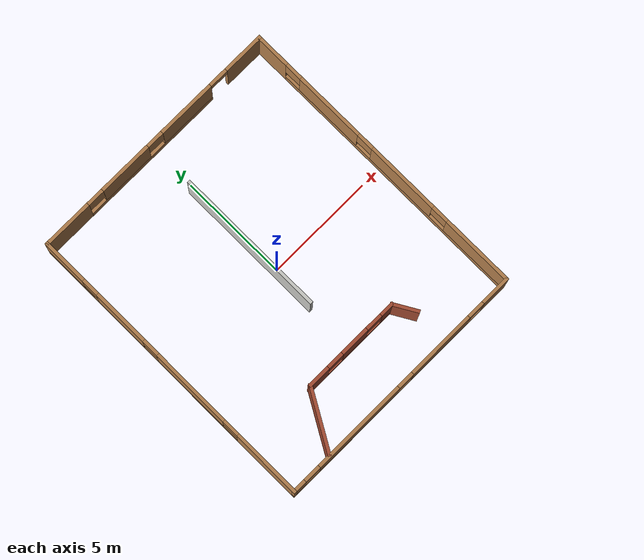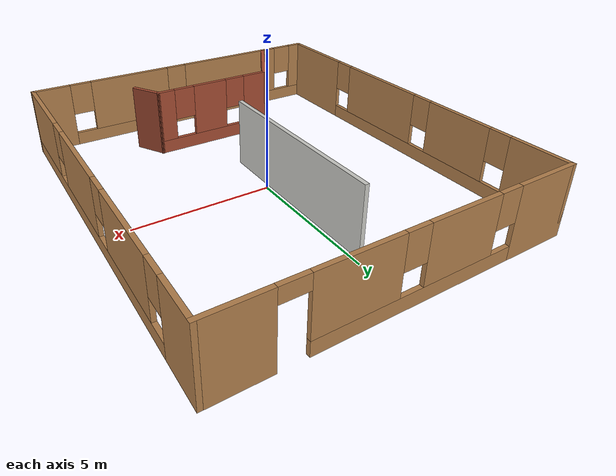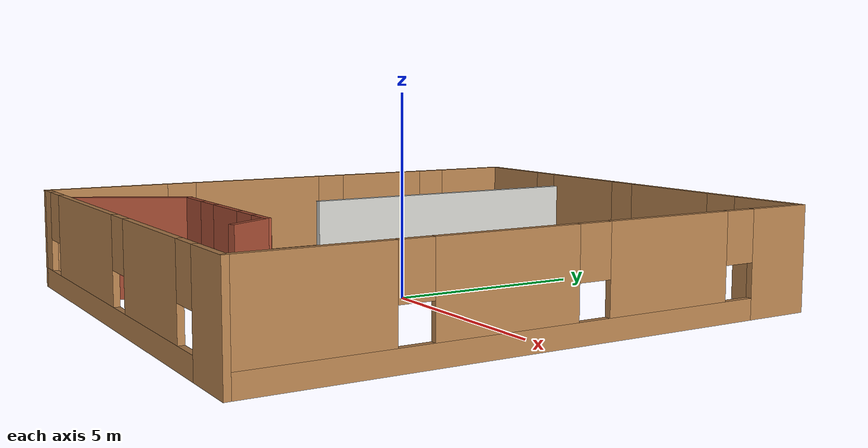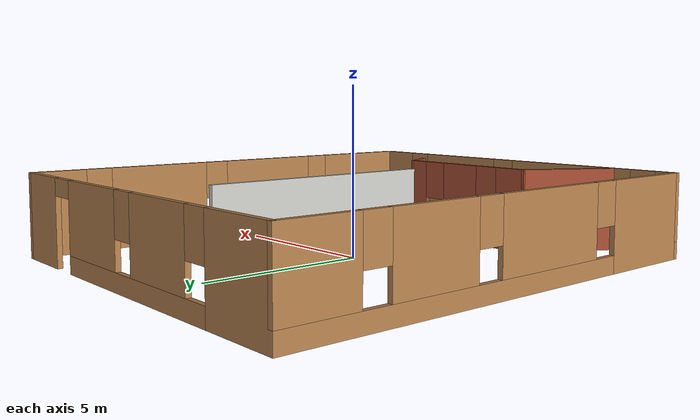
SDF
<?xml version='1.0'?>
<sdf version='1.7'>
  <model name='hotel'>
    <pose>0 0 0 0 -0 0</pose>
    <link name='Wall_0'>
      <pose>0 7 0 0 -0 0</pose>
      <visual name='Wall_0_Visual_0'>
        <pose>-4.89442 0 1.25 0 -0 0</pose>
        <geometry>
          <box>
            <size>2.36117 0.15 2.5</size>
          </box>
        </geometry>
        <material>
          <script>
            <uri>file://media/materials/scripts/gazebo.material</uri>
            <name>Gazebo/Wood</name>
          </script>
          <ambient>1 1 1 1</ambient>
        </material>
        <meta>
          <layer>0</layer>
        </meta>
      </visual>
      <collision name='Wall_0_Collision_0'>
        <geometry>
          <box>
            <size>2.36117 0.15 2.5</size>
          </box>
        </geometry>
        <pose>-4.89442 0 1.25 0 -0 0</pose>
      </collision>
      <visual name='Wall_0_Visual_1'>
        <pose>5.08476 0 1.25 0 -0 0</pose>
        <geometry>
          <box>
            <size>1.98047 0.15 2.5</size>
          </box>
        </geometry>
        <material>
          <script>
            <uri>file://media/materials/scripts/gazebo.material</uri>
            <name>Gazebo/Wood</name>
          </script>
          <ambient>1 1 1 1</ambient>
        </material>
        <meta>
          <layer>0</layer>
        </meta>
      </visual>
      <collision name='Wall_0_Collision_1'>
        <geometry>
          <box>
            <size>1.98047 0.15 2.5</size>
          </box>
        </geometry>
        <pose>5.08476 0 1.25 0 -0 0</pose>
      </collision>
      <visual name='Wall_0_Visual_2'>
        <pose>-0.259655 0 0.25 0 -0 0</pose>
        <geometry>
          <box>
            <size>6.90836 0.15 0.5</size>
          </box>
        </geometry>
        <material>
          <script>
            <uri>file://media/materials/scripts/gazebo.material</uri>
            <name>Gazebo/Wood</name>
          </script>
          <ambient>1 1 1 1</ambient>
        </material>
        <meta>
          <layer>0</layer>
        </meta>
      </visual>
      <collision name='Wall_0_Collision_2'>
        <geometry>
          <box>
            <size>6.90836 0.15 0.5</size>
          </box>
        </geometry>
        <pose>-0.259655 0 0.25 0 -0 0</pose>
      </collision>
      <visual name='Wall_0_Visual_3'>
        <pose>-1.63493 0 1.5 0 -0 0</pose>
        <geometry>
          <box>
            <size>2.55781 0.15 2</size>
          </box>
        </geometry>
        <material>
          <script>
            <uri>file://media/materials/scripts/gazebo.material</uri>
            <name>Gazebo/Wood</name>
          </script>
          <ambient>1 1 1 1</ambient>
        </material>
        <meta>
          <layer>0</layer>
        </meta>
      </visual>
      <collision name='Wall_0_Collision_3'>
        <geometry>
          <box>
            <size>2.55781 0.15 2</size>
          </box>
        </geometry>
        <pose>-1.63493 0 1.5 0 -0 0</pose>
      </collision>
      <visual name='Wall_0_Visual_4'>
        <pose>1.81925 0 1.5 0 -0 0</pose>
        <geometry>
          <box>
            <size>2.75055 0.15 2</size>
          </box>
        </geometry>
        <material>
          <script>
            <uri>file://media/materials/scripts/gazebo.material</uri>
            <name>Gazebo/Wood</name>
          </script>
          <ambient>1 1 1 1</ambient>
        </material>
        <meta>
          <layer>0</layer>
        </meta>
      </visual>
      <collision name='Wall_0_Collision_4'>
        <geometry>
          <box>
            <size>2.75055 0.15 2</size>
          </box>
        </geometry>
        <pose>1.81925 0 1.5 0 -0 0</pose>
      </collision>
      <visual name='Wall_0_Visual_5'>
        <pose>-3.31384 0 1.9 0 -0 0</pose>
        <geometry>
          <box>
            <size>0.8 0.15 1.2</size>
          </box>
        </geometry>
        <material>
          <script>
            <uri>file://media/materials/scripts/gazebo.material</uri>
            <name>Gazebo/Wood</name>
          </script>
          <ambient>1 1 1 1</ambient>
        </material>
        <meta>
          <layer>0</layer>
        </meta>
      </visual>
      <collision name='Wall_0_Collision_5'>
        <geometry>
          <box>
            <size>0.8 0.15 1.2</size>
          </box>
        </geometry>
        <pose>-3.31384 0 1.9 0 -0 0</pose>
      </collision>
      <visual name='Wall_0_Visual_6'>
        <pose>0.043978 0 1.9 0 -0 0</pose>
        <geometry>
          <box>
            <size>0.8 0.15 1.2</size>
          </box>
        </geometry>
        <material>
          <script>
            <uri>file://media/materials/scripts/gazebo.material</uri>
            <name>Gazebo/Wood</name>
          </script>
          <ambient>1 1 1 1</ambient>
        </material>
        <meta>
          <layer>0</layer>
        </meta>
      </visual>
      <collision name='Wall_0_Collision_6'>
        <geometry>
          <box>
            <size>0.8 0.15 1.2</size>
          </box>
        </geometry>
        <pose>0.043978 0 1.9 0 -0 0</pose>
      </collision>
      <visual name='Wall_0_Visual_7'>
        <pose>3.64452 0 2.25 0 -0 0</pose>
        <geometry>
          <box>
            <size>0.9 0.15 0.5</size>
          </box>
        </geometry>
        <material>
          <script>
            <uri>file://media/materials/scripts/gazebo.material</uri>
            <name>Gazebo/Wood</name>
          </script>
          <ambient>1 1 1 1</ambient>
        </material>
        <meta>
          <layer>0</layer>
        </meta>
      </visual>
      <collision name='Wall_0_Collision_7'>
        <geometry>
          <box>
            <size>0.9 0.15 0.5</size>
          </box>
        </geometry>
        <pose>3.64452 0 2.25 0 -0 0</pose>
      </collision>
    </link>
    <link name='Wall_1'>
      <pose>6 0 0 0 -0 -1.5708</pose>
      <visual name='Wall_1_Visual_0'>
        <pose>-6.2442 0 1.25 0 -0 0</pose>
        <geometry>
          <box>
            <size>1.66161 0.15 2.5</size>
          </box>
        </geometry>
        <material>
          <script>
            <uri>file://media/materials/scripts/gazebo.material</uri>
            <name>Gazebo/Wood</name>
          </script>
          <ambient>1 1 1 1</ambient>
        </material>
        <meta>
          <layer>0</layer>
        </meta>
      </visual>
      <collision name='Wall_1_Collision_0'>
        <geometry>
          <box>
            <size>1.66161 0.15 2.5</size>
          </box>
        </geometry>
        <pose>-6.2442 0 1.25 0 -0 0</pose>
      </collision>
      <visual name='Wall_1_Visual_1'>
        <pose>0.830805 0 0.25 0 -0 0</pose>
        <geometry>
          <box>
            <size>12.4884 0.15 0.5</size>
          </box>
        </geometry>
        <material>
          <script>
            <uri>file://media/materials/scripts/gazebo.material</uri>
            <name>Gazebo/Wood</name>
          </script>
          <ambient>1 1 1 1</ambient>
        </material>
        <meta>
          <layer>0</layer>
        </meta>
      </visual>
      <collision name='Wall_1_Collision_1'>
        <geometry>
          <box>
            <size>12.4884 0.15 0.5</size>
          </box>
        </geometry>
        <pose>0.830805 0 0.25 0 -0 0</pose>
      </collision>
      <visual name='Wall_1_Visual_2'>
        <pose>-2.97038 0 1.5 0 -0 0</pose>
        <geometry>
          <box>
            <size>3.28601 0.15 2</size>
          </box>
        </geometry>
        <material>
          <script>
            <uri>file://media/materials/scripts/gazebo.material</uri>
            <name>Gazebo/Wood</name>
          </script>
          <ambient>1 1 1 1</ambient>
        </material>
        <meta>
          <layer>0</layer>
        </meta>
      </visual>
      <collision name='Wall_1_Collision_2'>
        <geometry>
          <box>
            <size>3.28601 0.15 2</size>
          </box>
        </geometry>
        <pose>-2.97038 0 1.5 0 -0 0</pose>
      </collision>
      <visual name='Wall_1_Visual_3'>
        <pose>1.17631 0 1.5 0 -0 0</pose>
        <geometry>
          <box>
            <size>3.40738 0.15 2</size>
          </box>
        </geometry>
        <material>
          <script>
            <uri>file://media/materials/scripts/gazebo.material</uri>
            <name>Gazebo/Wood</name>
          </script>
          <ambient>1 1 1 1</ambient>
        </material>
        <meta>
          <layer>0</layer>
        </meta>
      </visual>
      <collision name='Wall_1_Collision_3'>
        <geometry>
          <box>
            <size>3.40738 0.15 2</size>
          </box>
        </geometry>
        <pose>1.17631 0 1.5 0 -0 0</pose>
      </collision>
      <visual name='Wall_1_Visual_4'>
        <pose>5.3775 0 1.5 0 -0 0</pose>
        <geometry>
          <box>
            <size>3.395 0.15 2</size>
          </box>
        </geometry>
        <material>
          <script>
            <uri>file://media/materials/scripts/gazebo.material</uri>
            <name>Gazebo/Wood</name>
          </script>
          <ambient>1 1 1 1</ambient>
        </material>
        <meta>
          <layer>0</layer>
        </meta>
      </visual>
      <collision name='Wall_1_Collision_4'>
        <geometry>
          <box>
            <size>3.395 0.15 2</size>
          </box>
        </geometry>
        <pose>5.3775 0 1.5 0 -0 0</pose>
      </collision>
      <visual name='Wall_1_Visual_5'>
        <pose>-5.01339 0 1.9 0 -0 0</pose>
        <geometry>
          <box>
            <size>0.8 0.15 1.2</size>
          </box>
        </geometry>
        <material>
          <script>
            <uri>file://media/materials/scripts/gazebo.material</uri>
            <name>Gazebo/Wood</name>
          </script>
          <ambient>1 1 1 1</ambient>
        </material>
        <meta>
          <layer>0</layer>
        </meta>
      </visual>
      <collision name='Wall_1_Collision_5'>
        <geometry>
          <box>
            <size>0.8 0.15 1.2</size>
          </box>
        </geometry>
        <pose>-5.01339 0 1.9 0 -0 0</pose>
      </collision>
      <visual name='Wall_1_Visual_6'>
        <pose>-0.927377 0 1.9 0 -0 0</pose>
        <geometry>
          <box>
            <size>0.8 0.15 1.2</size>
          </box>
        </geometry>
        <material>
          <script>
            <uri>file://media/materials/scripts/gazebo.material</uri>
            <name>Gazebo/Wood</name>
          </script>
          <ambient>1 1 1 1</ambient>
        </material>
        <meta>
          <layer>0</layer>
        </meta>
      </visual>
      <collision name='Wall_1_Collision_6'>
        <geometry>
          <box>
            <size>0.8 0.15 1.2</size>
          </box>
        </geometry>
        <pose>-0.927377 0 1.9 0 -0 0</pose>
      </collision>
      <visual name='Wall_1_Visual_7'>
        <pose>3.28 0 1.9 0 -0 0</pose>
        <geometry>
          <box>
            <size>0.8 0.15 1.2</size>
          </box>
        </geometry>
        <material>
          <script>
            <uri>file://media/materials/scripts/gazebo.material</uri>
            <name>Gazebo/Wood</name>
          </script>
          <ambient>1 1 1 1</ambient>
        </material>
        <meta>
          <layer>0</layer>
        </meta>
      </visual>
      <collision name='Wall_1_Collision_7'>
        <geometry>
          <box>
            <size>0.8 0.15 1.2</size>
          </box>
        </geometry>
        <pose>3.28 0 1.9 0 -0 0</pose>
      </collision>
    </link>
    <link name='Wall_2'>
      <pose>0 -7 0 0 -0 3.14159</pose>
      <visual name='Wall_2_Visual_0'>
        <pose>-5.36318 0 1.25 0 -0 0</pose>
        <geometry>
          <box>
            <size>1.42364 0.15 2.5</size>
          </box>
        </geometry>
        <material>
          <script>
            <uri>file://media/materials/scripts/gazebo.material</uri>
            <name>Gazebo/Wood</name>
          </script>
          <ambient>1 1 1 1</ambient>
        </material>
        <meta>
          <layer>0</layer>
        </meta>
      </visual>
      <collision name='Wall_2_Collision_0'>
        <geometry>
          <box>
            <size>1.42364 0.15 2.5</size>
          </box>
        </geometry>
        <pose>-5.36318 0 1.25 0 -0 0</pose>
      </collision>
      <visual name='Wall_2_Visual_1'>
        <pose>0.711821 0 0.25 0 -0 0</pose>
        <geometry>
          <box>
            <size>10.7264 0.15 0.5</size>
          </box>
        </geometry>
        <material>
          <script>
            <uri>file://media/materials/scripts/gazebo.material</uri>
            <name>Gazebo/Wood</name>
          </script>
          <ambient>1 1 1 1</ambient>
        </material>
        <meta>
          <layer>0</layer>
        </meta>
      </visual>
      <collision name='Wall_2_Collision_1'>
        <geometry>
          <box>
            <size>10.7264 0.15 0.5</size>
          </box>
        </geometry>
        <pose>0.711821 0 0.25 0 -0 0</pose>
      </collision>
      <visual name='Wall_2_Visual_2'>
        <pose>-2.24881 0 1.5 0 -0 0</pose>
        <geometry>
          <box>
            <size>3.2051 0.15 2</size>
          </box>
        </geometry>
        <material>
          <script>
            <uri>file://media/materials/scripts/gazebo.material</uri>
            <name>Gazebo/Wood</name>
          </script>
          <ambient>1 1 1 1</ambient>
        </material>
        <meta>
          <layer>0</layer>
        </meta>
      </visual>
      <collision name='Wall_2_Collision_2'>
        <geometry>
          <box>
            <size>3.2051 0.15 2</size>
          </box>
        </geometry>
        <pose>-2.24881 0 1.5 0 -0 0</pose>
      </collision>
      <visual name='Wall_2_Visual_3'>
        <pose>2.38336 0 1.5 0 -0 0</pose>
        <geometry>
          <box>
            <size>4.45922 0.15 2</size>
          </box>
        </geometry>
        <material>
          <script>
            <uri>file://media/materials/scripts/gazebo.material</uri>
            <name>Gazebo/Wood</name>
          </script>
          <ambient>1 1 1 1</ambient>
        </material>
        <meta>
          <layer>0</layer>
        </meta>
      </visual>
      <collision name='Wall_2_Collision_3'>
        <geometry>
          <box>
            <size>4.45922 0.15 2</size>
          </box>
        </geometry>
        <pose>2.38336 0 1.5 0 -0 0</pose>
      </collision>
      <visual name='Wall_2_Visual_4'>
        <pose>5.74399 0 1.5 0 -0 0</pose>
        <geometry>
          <box>
            <size>0.662031 0.15 2</size>
          </box>
        </geometry>
        <material>
          <script>
            <uri>file://media/materials/scripts/gazebo.material</uri>
            <name>Gazebo/Wood</name>
          </script>
          <ambient>1 1 1 1</ambient>
        </material>
        <meta>
          <layer>0</layer>
        </meta>
      </visual>
      <collision name='Wall_2_Collision_4'>
        <geometry>
          <box>
            <size>0.662031 0.15 2</size>
          </box>
        </geometry>
        <pose>5.74399 0 1.5 0 -0 0</pose>
      </collision>
      <visual name='Wall_2_Visual_5'>
        <pose>-4.25136 0 1.9 0 -0 0</pose>
        <geometry>
          <box>
            <size>0.8 0.15 1.2</size>
          </box>
        </geometry>
        <material>
          <script>
            <uri>file://media/materials/scripts/gazebo.material</uri>
            <name>Gazebo/Wood</name>
          </script>
          <ambient>1 1 1 1</ambient>
        </material>
        <meta>
          <layer>0</layer>
        </meta>
      </visual>
      <collision name='Wall_2_Collision_5'>
        <geometry>
          <box>
            <size>0.8 0.15 1.2</size>
          </box>
        </geometry>
        <pose>-4.25136 0 1.9 0 -0 0</pose>
      </collision>
      <visual name='Wall_2_Visual_6'>
        <pose>-0.246256 0 1.9 0 -0 0</pose>
        <geometry>
          <box>
            <size>0.8 0.15 1.2</size>
          </box>
        </geometry>
        <material>
          <script>
            <uri>file://media/materials/scripts/gazebo.material</uri>
            <name>Gazebo/Wood</name>
          </script>
          <ambient>1 1 1 1</ambient>
        </material>
        <meta>
          <layer>0</layer>
        </meta>
      </visual>
      <collision name='Wall_2_Collision_6'>
        <geometry>
          <box>
            <size>0.8 0.15 1.2</size>
          </box>
        </geometry>
        <pose>-0.246256 0 1.9 0 -0 0</pose>
      </collision>
      <visual name='Wall_2_Visual_7'>
        <pose>5.01297 0 1.9 0 -0 0</pose>
        <geometry>
          <box>
            <size>0.8 0.15 1.2</size>
          </box>
        </geometry>
        <material>
          <script>
            <uri>file://media/materials/scripts/gazebo.material</uri>
            <name>Gazebo/Wood</name>
          </script>
          <ambient>1 1 1 1</ambient>
        </material>
        <meta>
          <layer>0</layer>
        </meta>
      </visual>
      <collision name='Wall_2_Collision_7'>
        <geometry>
          <box>
            <size>0.8 0.15 1.2</size>
          </box>
        </geometry>
        <pose>5.01297 0 1.9 0 -0 0</pose>
      </collision>
    </link>
    <link name='Wall_3'>
      <pose>-6 0 0 0 -0 1.5708</pose>
      <visual name='Wall_3_Visual_0'>
        <pose>-5.45897 0 1.25 0 -0 0</pose>
        <geometry>
          <box>
            <size>3.23206 0.15 2.5</size>
          </box>
        </geometry>
        <material>
          <script>
            <uri>file://media/materials/scripts/gazebo.material</uri>
            <name>Gazebo/Wood</name>
          </script>
          <ambient>1 1 1 1</ambient>
        </material>
        <meta>
          <layer>0</layer>
        </meta>
      </visual>
      <collision name='Wall_3_Collision_0'>
        <geometry>
          <box>
            <size>3.23206 0.15 2.5</size>
          </box>
        </geometry>
        <pose>-5.45897 0 1.25 0 -0 0</pose>
      </collision>
      <visual name='Wall_3_Visual_1'>
        <pose>1.61603 0 0.25 0 -0 0</pose>
        <geometry>
          <box>
            <size>10.9179 0.15 0.5</size>
          </box>
        </geometry>
        <material>
          <script>
            <uri>file://media/materials/scripts/gazebo.material</uri>
            <name>Gazebo/Wood</name>
          </script>
          <ambient>1 1 1 1</ambient>
        </material>
        <meta>
          <layer>0</layer>
        </meta>
      </visual>
      <collision name='Wall_3_Collision_1'>
        <geometry>
          <box>
            <size>10.9179 0.15 0.5</size>
          </box>
        </geometry>
        <pose>1.61603 0 0.25 0 -0 0</pose>
      </collision>
      <visual name='Wall_3_Visual_2'>
        <pose>-1.17687 0 1.5 0 -0 0</pose>
        <geometry>
          <box>
            <size>3.73214 0.15 2</size>
          </box>
        </geometry>
        <material>
          <script>
            <uri>file://media/materials/scripts/gazebo.material</uri>
            <name>Gazebo/Wood</name>
          </script>
          <ambient>1 1 1 1</ambient>
        </material>
        <meta>
          <layer>0</layer>
        </meta>
      </visual>
      <collision name='Wall_3_Collision_2'>
        <geometry>
          <box>
            <size>3.73214 0.15 2</size>
          </box>
        </geometry>
        <pose>-1.17687 0 1.5 0 -0 0</pose>
      </collision>
      <visual name='Wall_3_Visual_3'>
        <pose>2.80856 0 1.5 0 -0 0</pose>
        <geometry>
          <box>
            <size>2.63872 0.15 2</size>
          </box>
        </geometry>
        <material>
          <script>
            <uri>file://media/materials/scripts/gazebo.material</uri>
            <name>Gazebo/Wood</name>
          </script>
          <ambient>1 1 1 1</ambient>
        </material>
        <meta>
          <layer>0</layer>
        </meta>
      </visual>
      <collision name='Wall_3_Collision_3'>
        <geometry>
          <box>
            <size>2.63872 0.15 2</size>
          </box>
        </geometry>
        <pose>2.80856 0 1.5 0 -0 0</pose>
      </collision>
      <visual name='Wall_3_Visual_4'>
        <pose>6.00146 0 1.5 0 -0 0</pose>
        <geometry>
          <box>
            <size>2.14708 0.15 2</size>
          </box>
        </geometry>
        <material>
          <script>
            <uri>file://media/materials/scripts/gazebo.material</uri>
            <name>Gazebo/Wood</name>
          </script>
          <ambient>1 1 1 1</ambient>
        </material>
        <meta>
          <layer>0</layer>
        </meta>
      </visual>
      <collision name='Wall_3_Collision_4'>
        <geometry>
          <box>
            <size>2.14708 0.15 2</size>
          </box>
        </geometry>
        <pose>6.00146 0 1.5 0 -0 0</pose>
      </collision>
      <visual name='Wall_3_Visual_5'>
        <pose>-3.44294 0 1.9 0 -0 0</pose>
        <geometry>
          <box>
            <size>0.8 0.15 1.2</size>
          </box>
        </geometry>
        <material>
          <script>
            <uri>file://media/materials/scripts/gazebo.material</uri>
            <name>Gazebo/Wood</name>
          </script>
          <ambient>1 1 1 1</ambient>
        </material>
        <meta>
          <layer>0</layer>
        </meta>
      </visual>
      <collision name='Wall_3_Collision_5'>
        <geometry>
          <box>
            <size>0.8 0.15 1.2</size>
          </box>
        </geometry>
        <pose>-3.44294 0 1.9 0 -0 0</pose>
      </collision>
      <visual name='Wall_3_Visual_6'>
        <pose>1.0892 0 1.9 0 -0 0</pose>
        <geometry>
          <box>
            <size>0.8 0.15 1.2</size>
          </box>
        </geometry>
        <material>
          <script>
            <uri>file://media/materials/scripts/gazebo.material</uri>
            <name>Gazebo/Wood</name>
          </script>
          <ambient>1 1 1 1</ambient>
        </material>
        <meta>
          <layer>0</layer>
        </meta>
      </visual>
      <collision name='Wall_3_Collision_6'>
        <geometry>
          <box>
            <size>0.8 0.15 1.2</size>
          </box>
        </geometry>
        <pose>1.0892 0 1.9 0 -0 0</pose>
      </collision>
      <visual name='Wall_3_Visual_7'>
        <pose>4.52792 0 1.9 0 -0 0</pose>
        <geometry>
          <box>
            <size>0.8 0.15 1.2</size>
          </box>
        </geometry>
        <material>
          <script>
            <uri>file://media/materials/scripts/gazebo.material</uri>
            <name>Gazebo/Wood</name>
          </script>
          <ambient>1 1 1 1</ambient>
        </material>
        <meta>
          <layer>0</layer>
        </meta>
      </visual>
      <collision name='Wall_3_Collision_7'>
        <geometry>
          <box>
            <size>0.8 0.15 1.2</size>
          </box>
        </geometry>
        <pose>4.52792 0 1.9 0 -0 0</pose>
      </collision>
    </link>
    <link name='Wall_5'>
      <collision name='Wall_5_Collision'>
        <geometry>
          <box>
            <size>3 0.15 2.5</size>
          </box>
        </geometry>
        <pose>0 0 1.25 0 -0 0</pose>
      </collision>
      <visual name='Wall_5_Visual'>
        <pose>0 0 1.25 0 -0 0</pose>
        <geometry>
          <box>
            <size>3 0.15 2.5</size>
          </box>
        </geometry>
        <material>
          <script>
            <uri>file://media/materials/scripts/gazebo.material</uri>
            <name>Gazebo/Bricks</name>
          </script>
          <ambient>1 1 1 1</ambient>
        </material>
        <meta>
          <layer>0</layer>
        </meta>
      </visual>
      <pose>-3.27974 -5.70405 0 0 -0 1.0472</pose>
    </link>
    <link name='Wall_6'>
      <pose>-0.267239 -4.46996 0 0 -0 0</pose>
      <visual name='Wall_6_Visual_0'>
        <pose>-1.83872 0 1.25 0 -0 0</pose>
        <geometry>
          <box>
            <size>1.07255 0.15 2.5</size>
          </box>
        </geometry>
        <material>
          <script>
            <uri>file://media/materials/scripts/gazebo.material</uri>
            <name>Gazebo/Bricks</name>
          </script>
          <ambient>1 1 1 1</ambient>
        </material>
        <meta>
          <layer>0</layer>
        </meta>
      </visual>
      <collision name='Wall_6_Collision_0'>
        <geometry>
          <box>
            <size>1.07255 0.15 2.5</size>
          </box>
        </geometry>
        <pose>-1.83872 0 1.25 0 -0 0</pose>
      </collision>
      <visual name='Wall_6_Visual_1'>
        <pose>0.536275 0 0.25 0 -0 0</pose>
        <geometry>
          <box>
            <size>3.67745 0.15 0.5</size>
          </box>
        </geometry>
        <material>
          <script>
            <uri>file://media/materials/scripts/gazebo.material</uri>
            <name>Gazebo/Bricks</name>
          </script>
          <ambient>1 1 1 1</ambient>
        </material>
        <meta>
          <layer>0</layer>
        </meta>
      </visual>
      <collision name='Wall_6_Collision_1'>
        <geometry>
          <box>
            <size>3.67745 0.15 0.5</size>
          </box>
        </geometry>
        <pose>0.536275 0 0.25 0 -0 0</pose>
      </collision>
      <visual name='Wall_6_Visual_2'>
        <pose>0.189851 0 1.5 0 -0 0</pose>
        <geometry>
          <box>
            <size>1.3846 0.15 2</size>
          </box>
        </geometry>
        <material>
          <script>
            <uri>file://media/materials/scripts/gazebo.material</uri>
            <name>Gazebo/Bricks</name>
          </script>
          <ambient>1 1 1 1</ambient>
        </material>
        <meta>
          <layer>0</layer>
        </meta>
      </visual>
      <collision name='Wall_6_Collision_2'>
        <geometry>
          <box>
            <size>1.3846 0.15 2</size>
          </box>
        </geometry>
        <pose>0.189851 0 1.5 0 -0 0</pose>
      </collision>
      <visual name='Wall_6_Visual_3'>
        <pose>2.02858 0 1.5 0 -0 0</pose>
        <geometry>
          <box>
            <size>0.692849 0.15 2</size>
          </box>
        </geometry>
        <material>
          <script>
            <uri>file://media/materials/scripts/gazebo.material</uri>
            <name>Gazebo/Bricks</name>
          </script>
          <ambient>1 1 1 1</ambient>
        </material>
        <meta>
          <layer>0</layer>
        </meta>
      </visual>
      <collision name='Wall_6_Collision_3'>
        <geometry>
          <box>
            <size>0.692849 0.15 2</size>
          </box>
        </geometry>
        <pose>2.02858 0 1.5 0 -0 0</pose>
      </collision>
      <visual name='Wall_6_Visual_4'>
        <pose>-0.90245 0 1.9 0 -0 0</pose>
        <geometry>
          <box>
            <size>0.8 0.15 1.2</size>
          </box>
        </geometry>
        <material>
          <script>
            <uri>file://media/materials/scripts/gazebo.material</uri>
            <name>Gazebo/Bricks</name>
          </script>
          <ambient>1 1 1 1</ambient>
        </material>
        <meta>
          <layer>0</layer>
        </meta>
      </visual>
      <collision name='Wall_6_Collision_4'>
        <geometry>
          <box>
            <size>0.8 0.15 1.2</size>
          </box>
        </geometry>
        <pose>-0.90245 0 1.9 0 -0 0</pose>
      </collision>
      <visual name='Wall_6_Visual_5'>
        <pose>1.28215 0 1.9 0 -0 0</pose>
        <geometry>
          <box>
            <size>0.8 0.15 1.2</size>
          </box>
        </geometry>
        <material>
          <script>
            <uri>file://media/materials/scripts/gazebo.material</uri>
            <name>Gazebo/Bricks</name>
          </script>
          <ambient>1 1 1 1</ambient>
        </material>
        <meta>
          <layer>0</layer>
        </meta>
      </visual>
      <collision name='Wall_6_Collision_5'>
        <geometry>
          <box>
            <size>0.8 0.15 1.2</size>
          </box>
        </geometry>
        <pose>1.28215 0 1.9 0 -0 0</pose>
      </collision>
    </link>
    <link name='Wall_7'>
      <collision name='Wall_7_Collision'>
        <geometry>
          <box>
            <size>1.25 0.15 2.5</size>
          </box>
        </geometry>
        <pose>0 0 1.25 0 -0 0</pose>
      </collision>
      <visual name='Wall_7_Visual'>
        <pose>0 0 1.25 0 -0 0</pose>
        <geometry>
          <box>
            <size>1.25 0.15 2.5</size>
          </box>
        </geometry>
        <material>
          <script>
            <uri>file://media/materials/scripts/gazebo.material</uri>
            <name>Gazebo/Bricks</name>
          </script>
          <ambient>1 1 1 1</ambient>
        </material>
        <meta>
          <layer>0</layer>
        </meta>
      </visual>
      <pose>2.30776 -4.94628 0 0 -0 -1.0472</pose>
    </link>
    <link name='Wall_9'>
      <collision name='Wall_9_Collision'>
        <geometry>
          <box>
            <size>7 0.15 2.5</size>
          </box>
        </geometry>
        <pose>0 0 1.25 0 -0 0</pose>
      </collision>
      <visual name='Wall_9_Visual'>
        <pose>0 0 1.25 0 -0 0</pose>
        <geometry>
          <box>
            <size>7 0.15 2.5</size>
          </box>
        </geometry>
        <material>
          <script>
            <uri>file://media/materials/scripts/gazebo.material</uri>
            <name>Gazebo/CeilingTiled</name>
          </script>
          <ambient>1 1 1 1</ambient>
        </material>
        <meta>
          <layer>0</layer>
        </meta>
      </visual>
      <pose>-0.199051 1.32233 0 0 -0 -1.5708</pose>
    </link>
    <static>1</static>
  </model>
</sdf>
